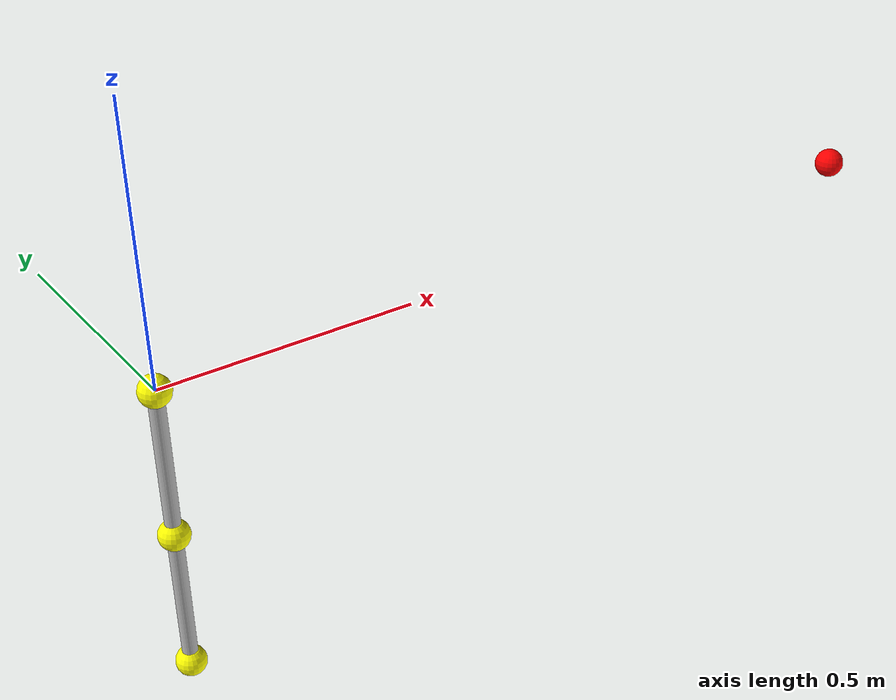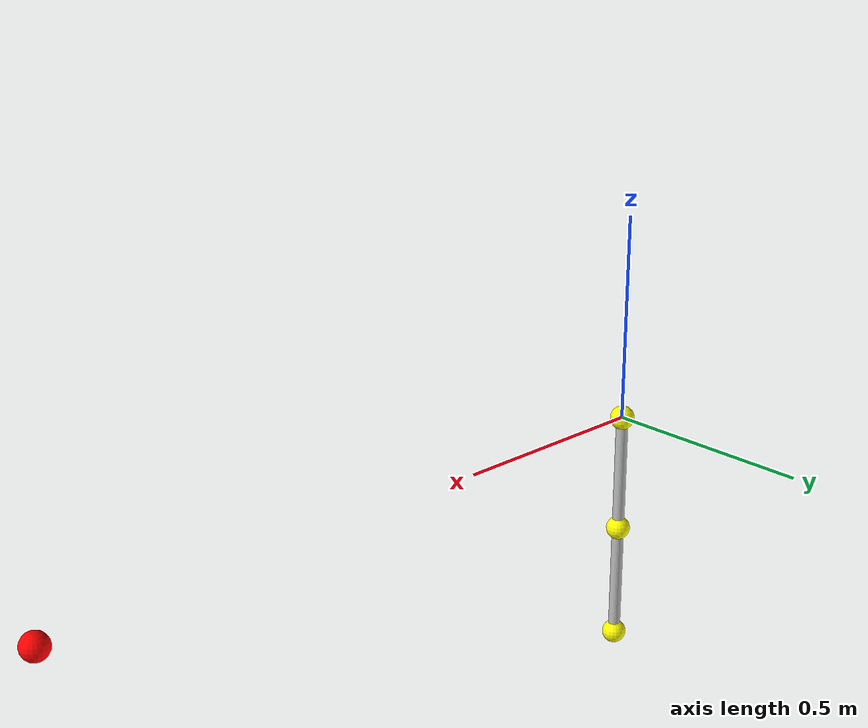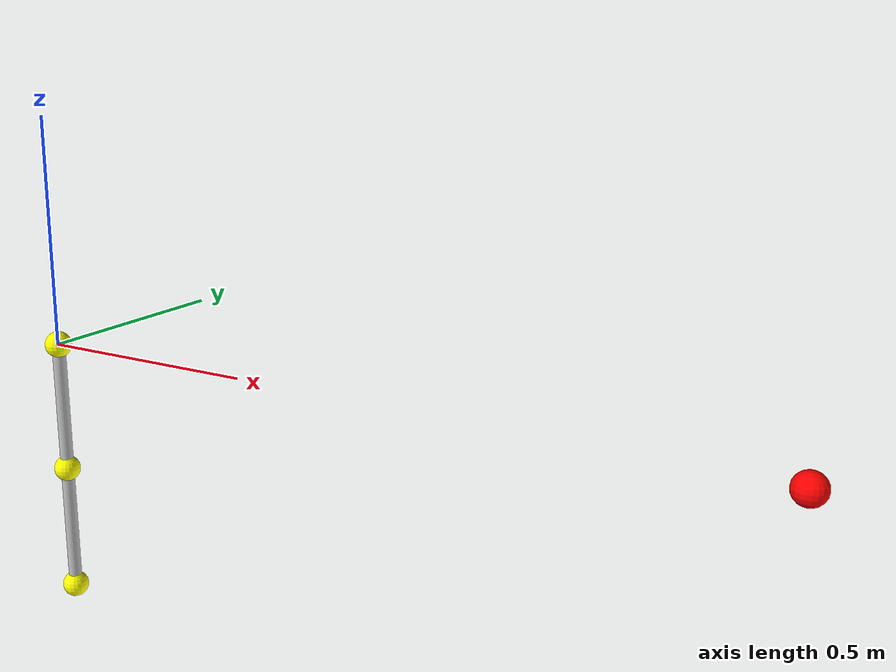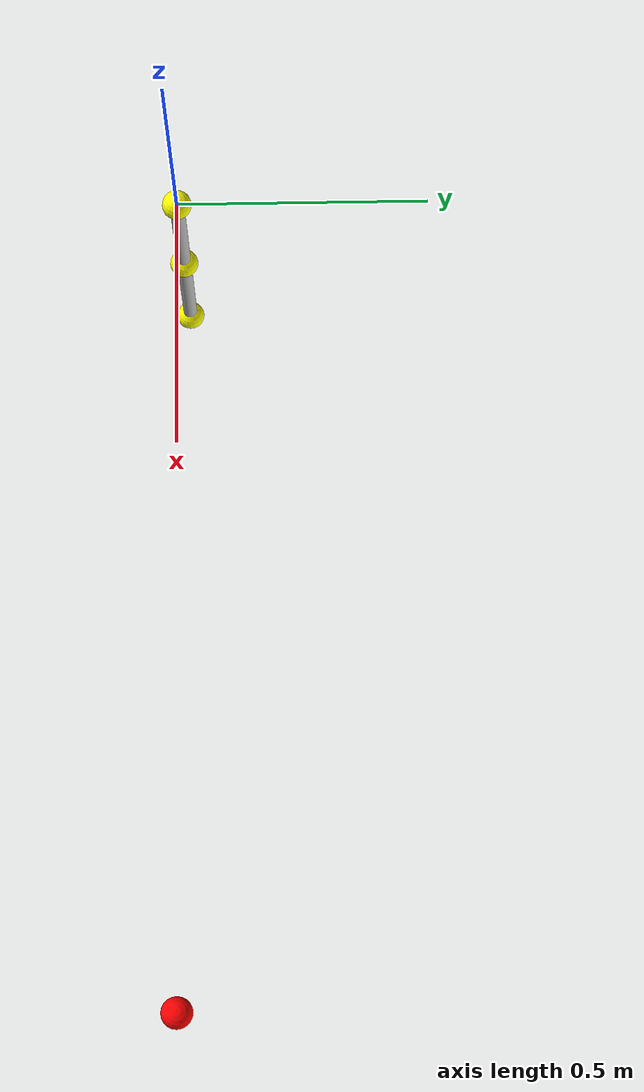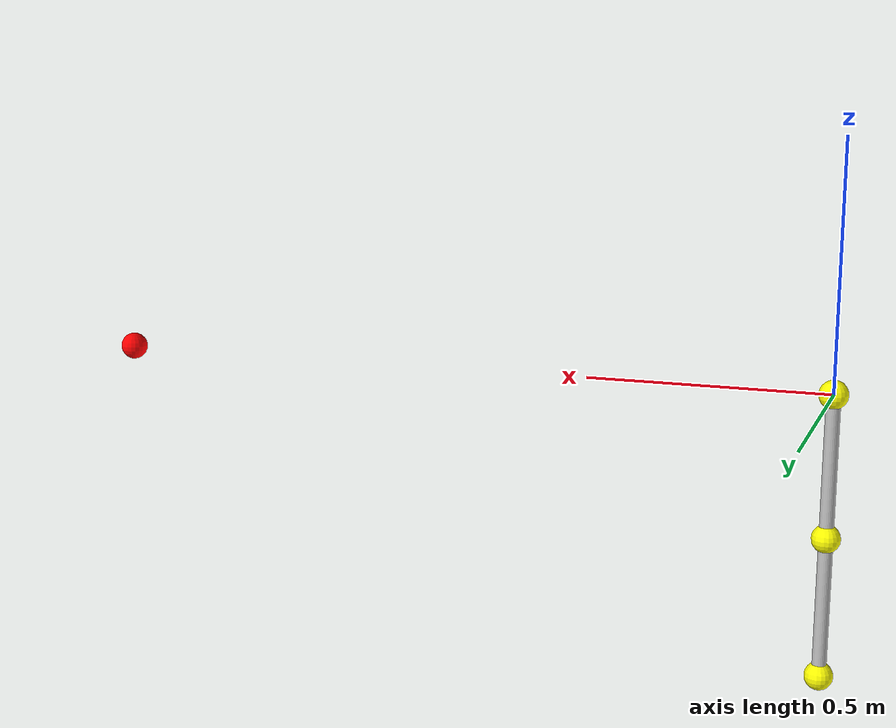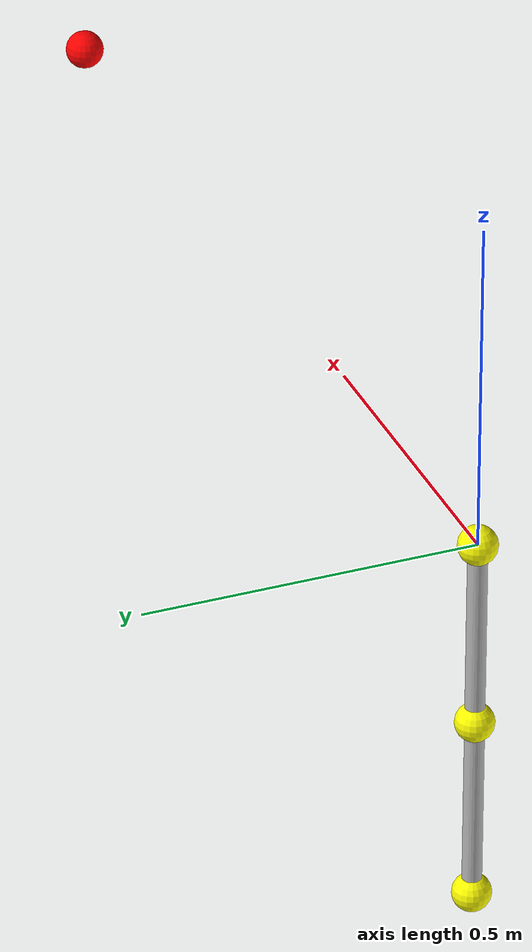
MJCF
<mujoco model="NNodeWhipModel">

  <compiler inertiafromgeom = "auto" angle = "radian"/>

   <!-- (semi-) implicit Euler method was used for the integrator with time step of 0.1ms -->
	<option timestep='0.0001' iterations='50' integrator='Euler' collision='all' gravity="0 0 -9.81"/>

  <asset>
    <!-- Texture of the surrounding sky box
         setting everything as white-ish color for better visualization -->
     <texture type="skybox"
              builtin="flat"
              rgb1="1 1 1"
              rgb2="1 1 1"
              width="100"
              height="100"/>

     <!-- Joint and Limb Color -->
     <material name = "JointColor"     rgba = "1.0 1.0 0.0 1.0"/>
     <material name = "LimbColor"      rgba = "0.7 0.7 0.7 1.0"/>
     <material name = "pointMassColor" rgba = "1.0 1.0 1.0 1.0"/>
     <material name = "RefMassColor"   rgba = "0.2 0.9 0.1 1.0"/>

  </asset>

  <!-- =============== MAIN BODY STARTS ============= -->
  <worldbody>

    <!-- =============== CAMERA DEF STARTS ============= -->
    <body name='camera' pos='0 0 0'>
				<camera name='myCamera' pos='0.7975 -3.19 -0.4785' euler='1.5707 0 0'/>
  	</body>
    <!-- =============== CAMERA DEF   ENDS ============= -->

    <!-- ===============  MODEL STARTS  =============== -->

    <!-- =============  UPPER ARM START =============== -->
		<body name='body_upper_arm' pos='0 0 0' euler='0 0 0'>
      <site name='site_upper_arm_start' pos='0 0 0' />
      <joint name='joint_shoulder' ref='0' type='hinge' stiffness='0' pos='0 0 0' axis='0 -1 0' />
			<inertial pos='0 0 -0.129' mass='1.595' diaginertia='0.011917 0.011937 0.001325'/>
			<geom name='geom_shoulder' type='sphere' pos='0 0 0' material='JointColor' size='0.0294' mass='0'/>
			<geom type='cylinder' fromto='0 0 0 0 0 -0.294'     material='LimbColor'  size='0.0147' mass='0'/>
      <site name='site_upper_arm_COM' pos='0 0 -0.129' />
      <site name='site_upper_arm_end' pos='0 0 -0.294' />
    	<!-- =============  UPPER ARM  END  =============== -->

      <!-- ============ FORE ARM START =============== -->
			<body name='body_fore_arm' pos='0 0 -0.294' euler='0 0 0'>
        <site name='site_fore_arm_start' pos='0 0 0' />
        <joint name='joint_elbow' ref='0' type='hinge' stiffness='0' pos='0 0 0' axis='0 -1 0'/>
				<inertial pos='0 0 -0.112' mass='0.869' diaginertia='0.004765 0.004855 0.000472'/>
				<geom name='geom_elbow'       type='sphere' pos='0 0 0'      material='JointColor' size='0.0294' mass='0'/>
				<geom type='cylinder' fromto='0 0 0 0 0 -0.291'             material='LimbColor'  size='0.0147' mass='0'/>
        <site name='site_fore_arm_COM' pos='0 0 -0.112' />
				<geom name='geom_EE' type='sphere' pos='0 0 -0.291' material='JointColor' size='0.0294' mass='0'/>
        <site name='site_whip_COM' pos='0 0 -0.291' />
        <site name='site_fore_arm_end' pos='0 0 -0.291' />

      </body>

  </body>

	  <geom name='target' type='sphere' pos='1.595 0.0 0.0' material='LimbColor' mass='0' size='0.03' rgba='1 0 0 1'/>

  </worldbody>

  <!-- Independently controlled torque actuators were mounted co-axially with the shoulder and elbow joints. -->
  <actuator>
		  <motor joint='joint_shoulder' name='motor_joint_shoulder' forcelimited='false'/>
		  <motor joint='joint_elbow'    name='motor_joint_elbow'    forcelimited='false'/>
  </actuator>

</mujoco>
